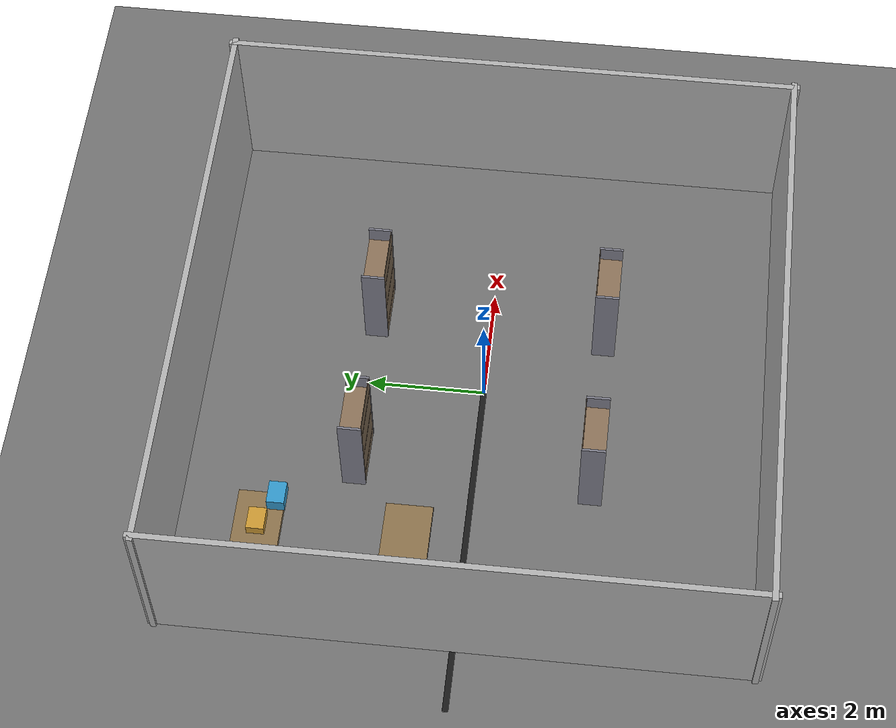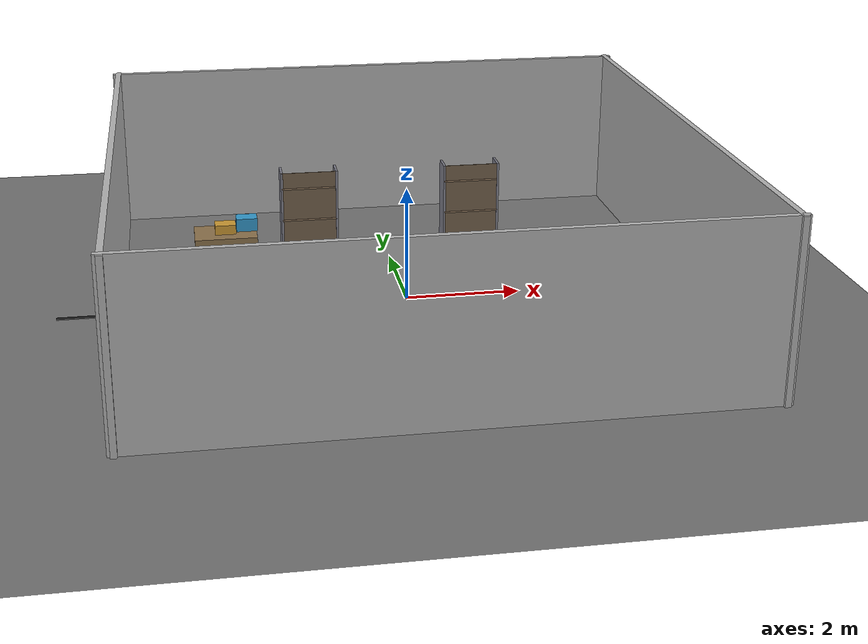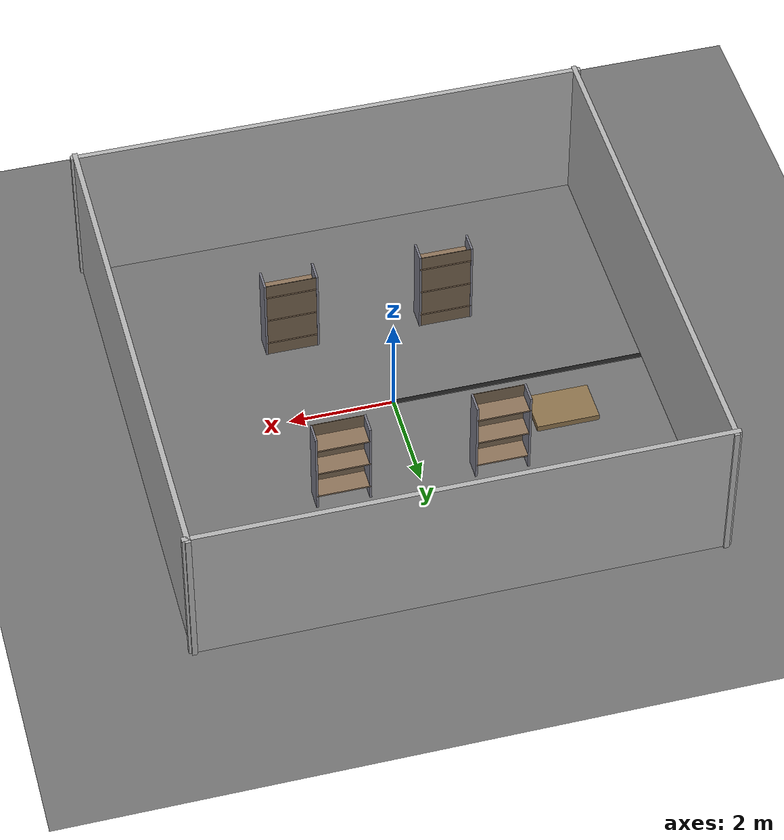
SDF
<sdf version="1.9">
 <world name="warehouse">
  <physics name="default_physics" default="true" type="ode">
   <max_step_size>0.001</max_step_size>
   <real_time_factor>1.0</real_time_factor>
   <real_time_update_rate>1000</real_time_update_rate>
   <gravity>0 0 -9.81</gravity>
   <ode>
    <solver><type>quick</type><iters>50</iters><sor>1.3</sor></solver>
    <constraints>
     <cfm>0.0</cfm>
     <erp>0.2</erp>
     <contact_max_correcting_vel>100.0</contact_max_correcting_vel>
     <contact_surface_layer>0.001</contact_surface_layer>
    </constraints>
   </ode>
  </physics>
  <scene>
   <ambient>0.4 0.4 0.4 1.0</ambient>
   <background>0.3 0.3 0.35 1.0</background>
   <grid>false</grid>
   <shadows>true</shadows>
  </scene>
  <light name="overhead_light" type="directional">
   <pose>0 0 10 0 0 0</pose>
   <diffuse>0.8 0.8 0.8 1.0</diffuse>
   <specular>0.3 0.3 0.3 1.0</specular>
   <direction>-0.5 -0.3 -0.8</direction>
  </light>
  <light name="ceiling_light_1" type="point">
   <pose>2.5 2.5 5.5 0 0 0</pose>
   <diffuse>0.9 0.85 0.7 1.0</diffuse>
   <specular>0.2 0.2 0.2 1.0</specular>
   <attenuation>
    <range>10</range>
    <constant>0.5</constant>
    <linear>0.01</linear>
    <quadratic>0.001</quadratic>
   </attenuation>
   <cast_shadows>false</cast_shadows>
  </light>
  <light name="ceiling_light_2" type="point">
   <pose>2.5 -2.5 5.5 0 0 0</pose>
   <diffuse>0.9 0.85 0.7 1.0</diffuse>
   <specular>0.2 0.2 0.2 1.0</specular>
   <attenuation>
    <range>10</range>
    <constant>0.5</constant>
    <linear>0.01</linear>
    <quadratic>0.001</quadratic>
   </attenuation>
   <cast_shadows>false</cast_shadows>
  </light>
  <light name="ceiling_light_3" type="point">
   <pose>-2.5 2.5 5.5 0 0 0</pose>
   <diffuse>0.9 0.85 0.7 1.0</diffuse>
   <specular>0.2 0.2 0.2 1.0</specular>
   <attenuation>
    <range>10</range>
    <constant>0.5</constant>
    <linear>0.01</linear>
    <quadratic>0.001</quadratic>
   </attenuation>
   <cast_shadows>false</cast_shadows>
  </light>
  <light name="ceiling_light_4" type="point">
   <pose>-2.5 -2.5 5.5 0 0 0</pose>
   <diffuse>0.9 0.85 0.7 1.0</diffuse>
   <specular>0.2 0.2 0.2 1.0</specular>
   <attenuation>
    <range>10</range>
    <constant>0.5</constant>
    <linear>0.01</linear>
    <quadratic>0.001</quadratic>
   </attenuation>
   <cast_shadows>false</cast_shadows>
  </light>
  <model name="ground_plane">
   <static>true</static>
   <link name="link">
    <visual name="visual">
     <geometry><plane><normal>0 0 1</normal><size>10 10</size></plane></geometry>
     <material>
      <ambient>0.45 0.45 0.45 1</ambient>
      <diffuse>0.45 0.45 0.45 1</diffuse>
      <specular>0.05 0.05 0.05 1</specular>
     </material>
    </visual>
    <collision name="collision">
     <geometry><plane><normal>0 0 1</normal><size>10 10</size></plane></geometry>
     <surface><friction><ode><mu>1.0</mu><mu2>1.0</mu2></ode></friction></surface>
    </collision>
   </link>
  </model>
  <model name="wall_north">
   <static>true</static>
   <pose>0 4.9 1.5 0 0 0</pose>
   <link name="link">
    <visual name="visual">
     <geometry><box><size>10 0.1 3</size></box></geometry>
     <material><ambient>0.7 0.7 0.7 1</ambient><diffuse>0.7 0.7 0.7 1</diffuse></material>
    </visual>
    <collision name="collision"><geometry><box><size>10 0.1 3</size></box></geometry></collision>
   </link>
  </model>
  <model name="wall_south">
   <static>true</static>
   <pose>0 -4.9 1.5 0 0 0</pose>
   <link name="link">
    <visual name="visual">
     <geometry><box><size>10 0.1 3</size></box></geometry>
     <material><ambient>0.7 0.7 0.7 1</ambient><diffuse>0.7 0.7 0.7 1</diffuse></material>
    </visual>
    <collision name="collision"><geometry><box><size>10 0.1 3</size></box></geometry></collision>
   </link>
  </model>
  <model name="wall_east">
   <static>true</static>
   <pose>4.9 0 1.5 0 0 0</pose>
   <link name="link">
    <visual name="visual">
     <geometry><box><size>0.1 10 3</size></box></geometry>
     <material><ambient>0.7 0.7 0.7 1</ambient><diffuse>0.7 0.7 0.7 1</diffuse></material>
    </visual>
    <collision name="collision"><geometry><box><size>0.1 10 3</size></box></geometry></collision>
   </link>
  </model>
  <model name="wall_west">
   <static>true</static>
   <pose>-4.9 0 1.5 0 0 0</pose>
   <link name="link">
    <visual name="visual">
     <geometry><box><size>0.1 10 3</size></box></geometry>
     <material><ambient>0.7 0.7 0.7 1</ambient><diffuse>0.7 0.7 0.7 1</diffuse></material>
    </visual>
    <collision name="collision"><geometry><box><size>0.1 10 3</size></box></geometry></collision>
   </link>
  </model>
  <include><uri>model://shelf</uri><name>shelf_north_1</name><pose>1.5 2.0 0 0 0 0</pose></include>
  <include><uri>model://shelf</uri><name>shelf_north_2</name><pose>-1.5 2.0 0 0 0 0</pose></include>
  <include><uri>model://shelf</uri><name>shelf_south_1</name><pose>1.5 -2.0 0 0 0 3.1416</pose></include>
  <include><uri>model://shelf</uri><name>shelf_south_2</name><pose>-1.5 -2.0 0 0 0 3.1416</pose></include>
  <model name="pallet_1">
   <static>false</static>
   <pose>-3.0 3.5 0.06 0 0 0</pose>
   <link name="pallet">
    <inertial>
     <mass>15.0</mass>
     <inertia><ixx>0.5</ixx><ixy>0.0</ixy><ixz>0.0</ixz><iyy>0.3</iyy><iyz>0.0</iyz><izz>0.5</izz></inertia>
    </inertial>
    <visual name="pallet_visual">
     <geometry><box><size>1.2 0.8 0.12</size></box></geometry>
     <material><ambient>0.55 0.45 0.30 1</ambient><diffuse>0.55 0.45 0.30 1</diffuse></material>
    </visual>
    <collision name="pallet_collision"><geometry><box><size>1.2 0.8 0.12</size></box></geometry></collision>
   </link>
  </model>
  <model name="pallet_2">
   <static>false</static>
   <pose>-3.0 1.0 0.06 0 0 0</pose>
   <link name="pallet">
    <inertial>
     <mass>15.0</mass>
     <inertia><ixx>0.5</ixx><ixy>0.0</ixy><ixz>0.0</ixz><iyy>0.3</iyy><iyz>0.0</iyz><izz>0.5</izz></inertia>
    </inertial>
    <visual name="pallet_visual">
     <geometry><box><size>1.2 0.8 0.12</size></box></geometry>
     <material><ambient>0.55 0.45 0.30 1</ambient><diffuse>0.55 0.45 0.30 1</diffuse></material>
    </visual>
    <collision name="pallet_collision"><geometry><box><size>1.2 0.8 0.12</size></box></geometry></collision>
   </link>
  </model>
  <model name="box_on_pallet_1">
   <static>false</static>
   <pose>-3.0 3.5 0.18 0 0 0</pose>
   <link name="box">
    <inertial>
     <mass>2.0</mass>
     <inertia><ixx>0.02</ixx><ixy>0.0</ixy><ixz>0.0</ixz><iyy>0.01</iyy><iyz>0.0</iyz><izz>0.02</izz></inertia>
    </inertial>
    <visual name="box_visual">
     <geometry><box><size>0.4 0.3 0.25</size></box></geometry>
     <material><ambient>0.8 0.6 0.2 1</ambient><diffuse>0.8 0.6 0.2 1</diffuse></material>
    </visual>
    <collision name="box_collision"><geometry><box><size>0.4 0.3 0.25</size></box></geometry></collision>
   </link>
  </model>
  <model name="box_on_pallet_2">
   <static>false</static>
   <pose>-2.6 3.2 0.40 0 0 0</pose>
   <link name="box">
    <inertial>
     <mass>2.0</mass>
     <inertia><ixx>0.02</ixx><ixy>0.0</ixy><ixz>0.0</ixz><iyy>0.01</iyy><iyz>0.0</iyz><izz>0.02</izz></inertia>
    </inertial>
    <visual name="box_visual">
     <geometry><box><size>0.4 0.3 0.25</size></box></geometry>
     <material><ambient>0.2 0.6 0.8 1</ambient><diffuse>0.2 0.6 0.8 1</diffuse></material>
    </visual>
    <collision name="box_collision"><geometry><box><size>0.4 0.3 0.25</size></box></geometry></collision>
   </link>
  </model>
  <model name="lane_marker_1">
   <static>true</static>
   <pose>-3.0 0 0.001 0 0 0</pose>
   <link name="line">
    <visual name="marker_visual">
     <geometry><box><size>6 0.1 0.005</size></box></geometry>
     <material><ambient>0.1 0.1 0.1 1</ambient><diffuse>0.1 0.1 0.1 1</diffuse></material>
    </visual>
   </link>
  </model>
 </world>
</sdf>

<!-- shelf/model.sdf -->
<!--
  Shelf model — a 3-level industrial shelf unit for warehouse scenarios.
  Dimensions: 1.0m (W) × 0.4m (D) × 1.8m (H)
  Each shelf spaced 0.6m apart vertically.
-->
<sdf version="1.9">
  <model name="shelf">

    <!-- Left upright pillar -->
    <link name="pillar_left">
      <pose>-0.5 0 0.9 0 0 0</pose>
      <inertial>
        <mass>5.0</mass>
        <inertia>
          <ixx>1.5</ixx> <ixy>0.0</ixy> <ixz>0.0</ixz>
          <iyy>1.5</iyy> <iyz>0.0</iyz>
          <izz>0.01</izz>
        </inertia>
      </inertial>
      <visual name="pillar_left_visual">
        <geometry>
          <box>
            <size>0.04 0.40 1.80</size>
          </box>
        </geometry>
        <material>
          <ambient>0.5 0.5 0.55 1</ambient>
          <diffuse>0.5 0.5 0.55 1</diffuse>
        </material>
      </visual>
      <collision name="pillar_left_collision">
        <geometry>
          <box>
            <size>0.04 0.40 1.80</size>
          </box>
        </geometry>
      </collision>
    </link>

    <!-- Right upright pillar -->
    <link name="pillar_right">
      <pose>0.5 0 0.9 0 0 0</pose>
      <inertial>
        <mass>5.0</mass>
        <inertia>
          <ixx>1.5</ixx> <ixy>0.0</ixy> <ixz>0.0</ixz>
          <iyy>1.5</iyy> <iyz>0.0</iyz>
          <izz>0.01</izz>
        </inertia>
      </inertial>
      <visual name="pillar_right_visual">
        <geometry>
          <box>
            <size>0.04 0.40 1.80</size>
          </box>
        </geometry>
        <material>
          <ambient>0.5 0.5 0.55 1</ambient>
          <diffuse>0.5 0.5 0.55 1</diffuse>
        </material>
      </visual>
      <collision name="pillar_right_collision">
        <geometry>
          <box>
            <size>0.04 0.40 1.80</size>
          </box>
        </geometry>
      </collision>
    </link>

    <!-- Level 1 shelf (bottom) -->
    <link name="shelf_1">
      <pose>0 0 0.3 0 0 0</pose>
      <inertial>
        <mass>3.0</mass>
        <inertia>
          <ixx>0.5</ixx> <ixy>0.0</ixy> <ixz>0.0</ixz>
          <iyy>0.04</iyy> <iyz>0.0</iyz>
          <izz>0.5</izz>
        </inertia>
      </inertial>
      <visual name="shelf_1_visual">
        <geometry>
          <box>
            <size>1.00 0.40 0.03</size>
          </box>
        </geometry>
        <material>
          <ambient>0.55 0.45 0.35 1</ambient>
          <diffuse>0.55 0.45 0.35 1</diffuse>
        </material>
      </visual>
      <collision name="shelf_1_collision">
        <geometry>
          <box>
            <size>1.00 0.40 0.03</size>
          </box>
        </geometry>
      </collision>
    </link>

    <!-- Level 2 shelf (middle) -->
    <link name="shelf_2">
      <pose>0 0 0.9 0 0 0</pose>
      <inertial>
        <mass>3.0</mass>
        <inertia>
          <ixx>0.5</ixx> <ixy>0.0</ixy> <ixz>0.0</ixz>
          <iyy>0.04</iyy> <iyz>0.0</iyz>
          <izz>0.5</izz>
        </inertia>
      </inertial>
      <visual name="shelf_2_visual">
        <geometry>
          <box>
            <size>1.00 0.40 0.03</size>
          </box>
        </geometry>
        <material>
          <ambient>0.55 0.45 0.35 1</ambient>
          <diffuse>0.55 0.45 0.35 1</diffuse>
        </material>
      </visual>
      <collision name="shelf_2_collision">
        <geometry>
          <box>
            <size>1.00 0.40 0.03</size>
          </box>
        </geometry>
      </collision>
    </link>

    <!-- Level 3 shelf (top) -->
    <link name="shelf_3">
      <pose>0 0 1.5 0 0 0</pose>
      <inertial>
        <mass>3.0</mass>
        <inertia>
          <ixx>0.5</ixx> <ixy>0.0</ixy> <ixz>0.0</ixz>
          <iyy>0.04</iyy> <iyz>0.0</iyz>
          <izz>0.5</izz>
        </inertia>
      </inertial>
      <visual name="shelf_3_visual">
        <geometry>
          <box>
            <size>1.00 0.40 0.03</size>
          </box>
        </geometry>
        <material>
          <ambient>0.55 0.45 0.35 1</ambient>
          <diffuse>0.55 0.45 0.35 1</diffuse>
        </material>
      </visual>
      <collision name="shelf_3_collision">
        <geometry>
          <box>
            <size>1.00 0.40 0.03</size>
          </box>
        </geometry>
      </collision>
    </link>

    <!-- Back panel -->
    <link name="back_panel">
      <pose>0 -0.19 0.9 0 0 0</pose>
      <inertial>
        <mass>2.0</mass>
        <inertia>
          <ixx>0.5</ixx> <ixy>0.0</ixy> <ixz>0.0</ixz>
          <iyy>0.01</iyy> <iyz>0.0</iyz>
          <izz>0.5</izz>
        </inertia>
      </inertial>
      <visual name="back_panel_visual">
        <geometry>
          <box>
            <size>1.00 0.01 1.80</size>
          </box>
        </geometry>
        <material>
          <ambient>0.45 0.38 0.3 1</ambient>
          <diffuse>0.45 0.38 0.3 1</diffuse>
        </material>
      </visual>
      <collision name="back_panel_collision">
        <geometry>
          <box>
            <size>1.00 0.01 1.80</size>
          </box>
        </geometry>
      </collision>
    </link>

  </model>
</sdf>
